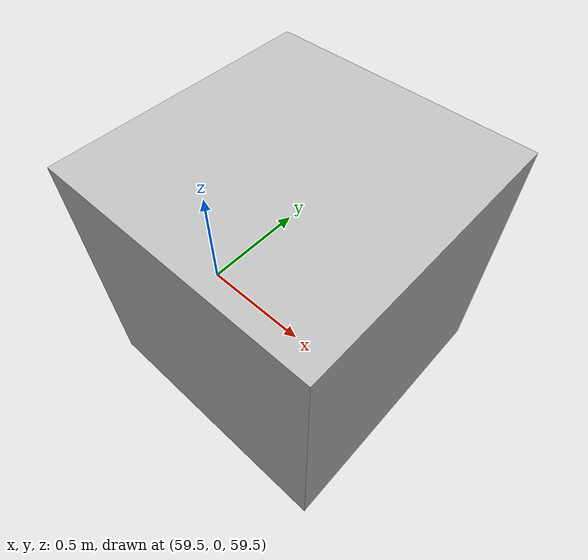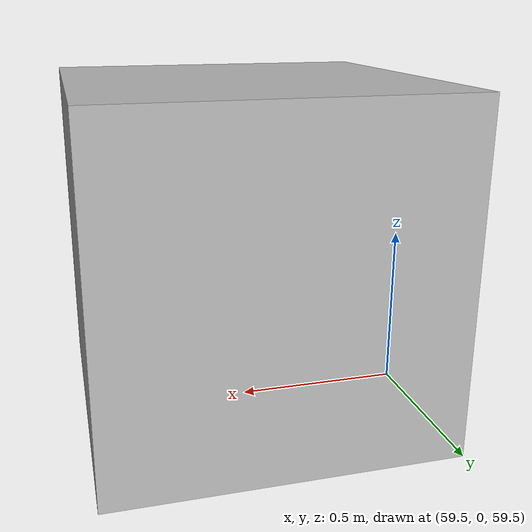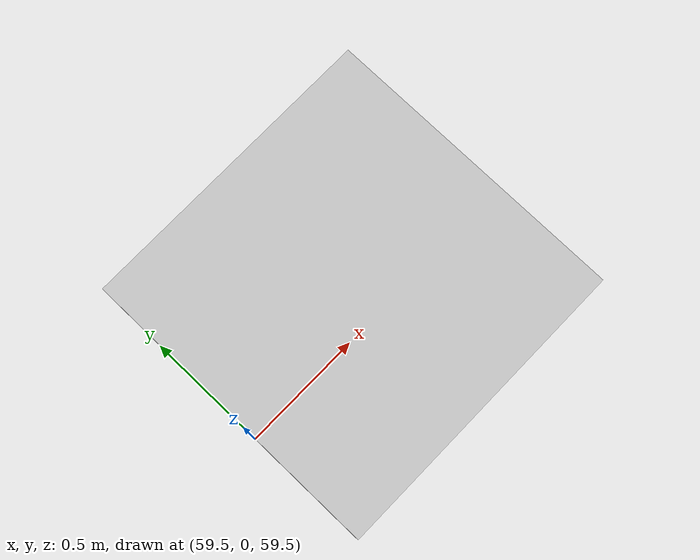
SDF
<?xml version="1.0" ?>
<sdf version="1.6">
  <world name="default">
    <gui>
      <camera name="user_camera">
        <pose>-5 0 1 0 0.2 0</pose>
      </camera>
    </gui>
    <scene>
      <grid>0</grid>
      <origin_visual>0</origin_visual>
      <ambient>0.592 0.624 0.635 1</ambient>
      <sky>
        <clouds>
          <speed>12</speed>
        </clouds>
      </sky>
      <background>0.35 0.35 0.35 1</background>
      <shadows>1</shadows>
    </scene>
    <physics name='default_physics' default='0' type='ode'>
      <gravity>0 0 -9.8066</gravity>
      <ode>
        <solver>
          <type>quick</type>
          <iters>10</iters>
          <sor>1.3</sor>
          <use_dynamic_moi_rescaling>0</use_dynamic_moi_rescaling>
        </solver>
        <constraints>
          <cfm>0</cfm>
          <erp>0.2</erp>
          <contact_max_correcting_vel>100</contact_max_correcting_vel>
          <contact_surface_layer>0.001</contact_surface_layer>
        </constraints>
      </ode>
      <max_step_size>0.002</max_step_size>
      <real_time_factor>1</real_time_factor>
      <real_time_update_rate>500</real_time_update_rate>
      <magnetic_field>6.0e-6 2.3e-5 -4.2e-5</magnetic_field>
    </physics>
    <gravity>0 0 -9.8</gravity>
    <include>
      <uri>model://sun</uri>
    </include>

    <model name="ground_plane">
      <static>true</static>
      <link name="link">
        <collision name="collision">
          <geometry>
            <plane>
              <normal>0 0 1</normal>
              <size>5000 5000</size>
            </plane>
          </geometry>

            <friction>
              <ode>
                <mu>100</mu>
                <mu2>50</mu2>
              </ode>
            </friction>

        </collision>

        <visual name="runway">
          <pose>000 0 0.05 0 0 0</pose>
          <cast_shadows>false</cast_shadows>
          <geometry>
            <plane>
              <normal>0 0 1</normal>
              <size>1829 45</size>
            </plane>
          </geometry>
          <material>
            <script>
              <uri>file://media/materials/scripts/gazebo.material</uri>
              <name>Gazebo/Runway</name>
            </script>
          </material>
        </visual>

	<visual name="runway2">
          <pose>50 500 0.05 0 0 0</pose>
          <cast_shadows>false</cast_shadows>
          <geometry>
            <plane>
              <normal>0 0 1</normal>
              <size>1829 45</size>
            </plane>
          </geometry>
          <material>
            <script>
              <uri>file://media/materials/scripts/gazebo.material</uri>
              <name>Gazebo/Runway</name>
            </script>
          </material>
        </visual>

	<visual name="runway3">
          <pose>0 -500 0.05 0 0 3.14</pose>
          <cast_shadows>false</cast_shadows>
          <geometry>
            <plane>
              <normal>0 0 1</normal>
              <size>1829 45</size>
            </plane>
          </geometry>
          <material>
            <script>
              <uri>file://media/materials/scripts/gazebo.material</uri>
              <name>Gazebo/Runway</name>
            </script>
          </material>
        </visual>

        <visual name="gary1">
          <pose>0 250 0.01 0 0 0</pose>
          <cast_shadows>false</cast_shadows>
          <geometry>
            <plane>
              <normal>0 0 1</normal>
              <size>500 500</size>
            </plane>
          </geometry>
          <material>
            <script>
              <uri>file://media/materials/scripts/gazebo.material</uri>
              <name>Gazebo/Gray</name>
            </script>
          </material>
        </visual>

        <visual name="gary3">
          <pose>0 -250 0.01 0 0 0</pose>
          <cast_shadows>false</cast_shadows>
          <geometry>
            <plane>
              <normal>0 0 1</normal>
              <size>500 500</size>
            </plane>
          </geometry>
          <material>
            <script>
              <uri>file://media/materials/scripts/gazebo.material</uri>
              <name>Gazebo/Gray</name>
            </script>
          </material>
        </visual>

        <visual name="grass">
          <pose>0 0 -0.1 0 0 0</pose>
          <cast_shadows>false</cast_shadows>
          <geometry>
            <plane>
              <normal>0 0 1</normal>
              <size>3000 3000</size>
            </plane>
          </geometry>
          <material>
            <script>
              <uri>file://media/materials/scripts/gazebo.material</uri>
              <name>Gazebo/Grass</name>
            </script>
          </material>
        </visual>

      </link>
    </model>
    <model name="target_sephere">
      <static>true</static> <!-- 设置模型为静态，不受重力影响 -->
      <self_collide>false</self_collide> <!-- 设置模型不与自身碰撞 -->
      <gravity>false</gravity> <!-- 设置模型不受重力影响 -->
      <allow_auto_disable>true</allow_auto_disable> <!-- 允许自动禁用模型 -->
      <pose>60 0 60 0 0 0</pose> <!-- 设置 box 的位置，x y z roll pitch yaw -->
      <link name="link">
        <collision name="collision">
          <geometry>
            <box>
              <size>1 1 1</size> <!-- 设置 box 的大小 -->
            </box>
          </geometry>
        </collision>
        <visual name="visual">
          <geometry>
            <box>
              <size>1 1 1</size> <!-- 设置 box 的大小 -->
            </box>
          </geometry>
        </visual>
      </link>
    </model>

  </world>
</sdf>
